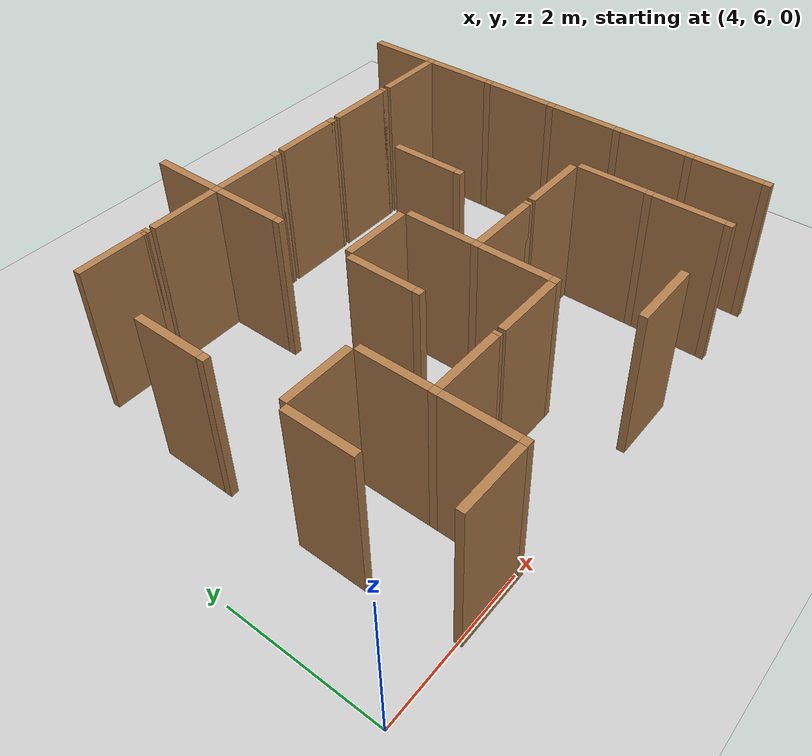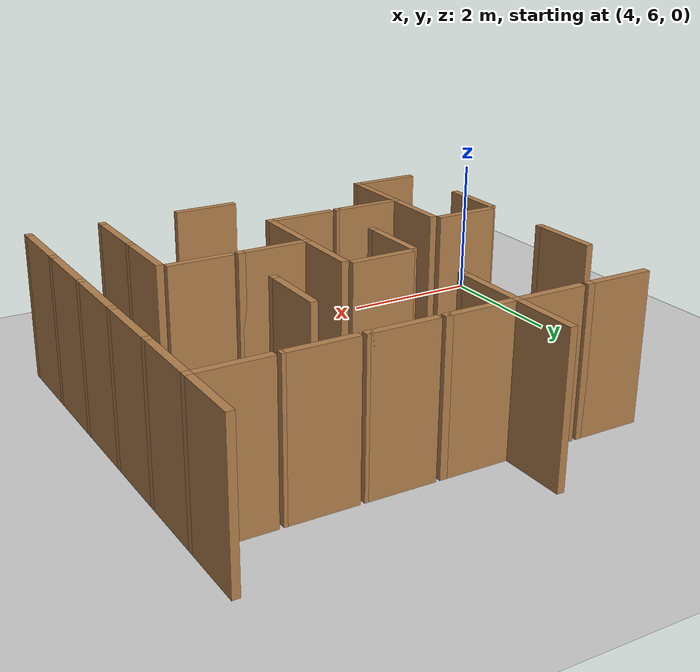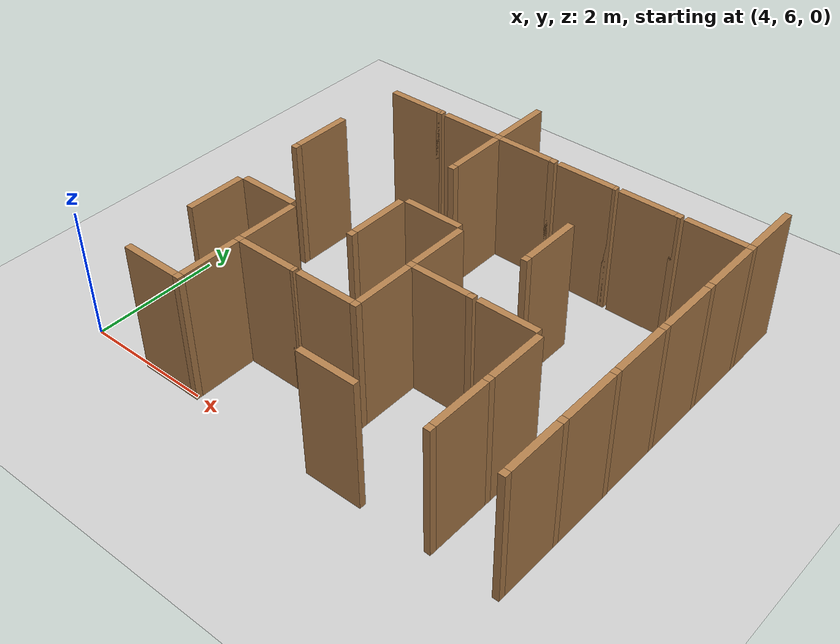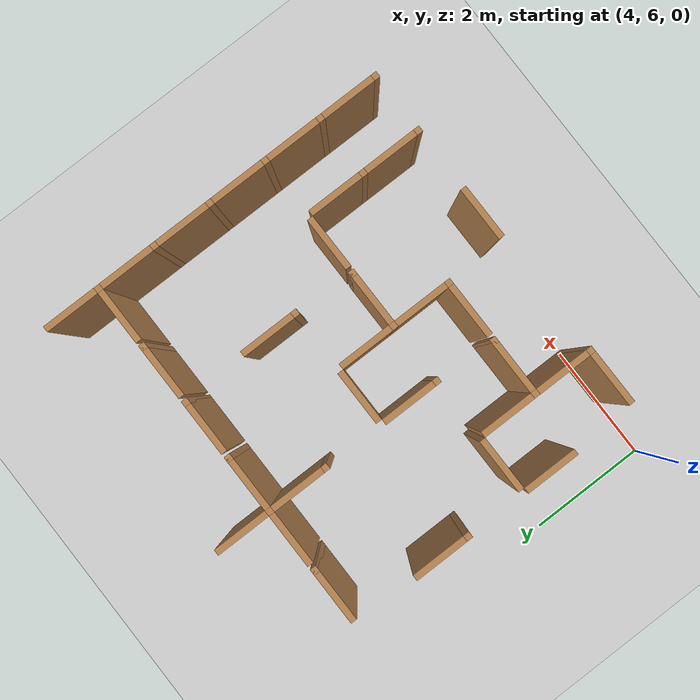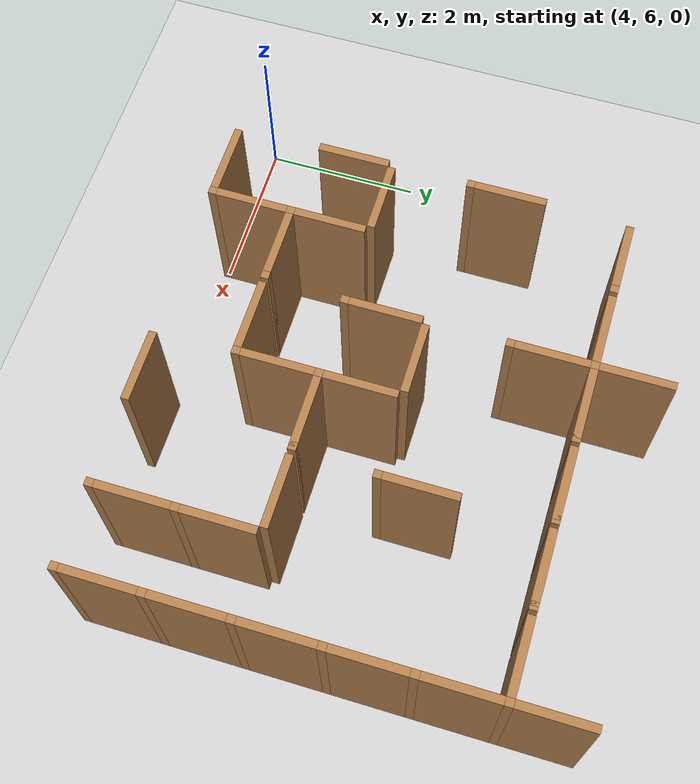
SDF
<sdf version="1.6">
 <world name="default">
  <include><uri>model://sun</uri></include>
  <model name="ground_plane">
   <static>true</static>
   <link name="link">
    <collision name="collision"><geometry><plane><size>12.0 12.0</size></plane></geometry></collision>
    <visual name="visual">
     <cast_shadows>false</cast_shadows>
     <geometry><plane><size>12.0 12.0</size></plane></geometry>
     <material>
      <script><uri>file://media/materials/scripts/gazebo.material</uri><name>Gazebo/Grey</name></script>
     </material>
    </visual>
   </link>
   <pose>6.0 6.0 0 0 0 0</pose>
  </model>
  <model name="vwall_6_6">
   <pose>6.0 6.5 1.0 0 0 0</pose>
   <link name="link">
    <collision name="collision"><geometry><box><size>0.1 0.9 2</size></box></geometry></collision>
    <visual name="visual">
     <geometry><box><size>0.1 0.9 2</size></box></geometry>
     <material>
      <script><uri>file://media/materials/scripts/gazebo.material</uri><name>Gazebo/Wood</name></script>
     </material>
    </visual>
   </link>
  </model>
  <model name="joint_6.0_6.0">
   <pose>6.0 6.0 1.0 0 0 0</pose>
   <link name="link">
    <collision name="collision"><geometry><box><size>0.1 0.1 2</size></box></geometry></collision>
    <visual name="visual">
     <geometry><box><size>0.1 0.1 2</size></box></geometry>
     <material>
      <script><uri>file://media/materials/scripts/gazebo.material</uri><name>Gazebo/Wood</name></script>
     </material>
    </visual>
   </link>
  </model>
  <model name="vwall_6_10">
   <pose>10.0 6.5 1.0 0 0 0</pose>
   <link name="link">
    <collision name="collision"><geometry><box><size>0.1 0.9 2</size></box></geometry></collision>
    <visual name="visual">
     <geometry><box><size>0.1 0.9 2</size></box></geometry>
     <material>
      <script><uri>file://media/materials/scripts/gazebo.material</uri><name>Gazebo/Wood</name></script>
     </material>
    </visual>
   </link>
  </model>
  <model name="joint_10.0_6.0">
   <pose>10.0 6.0 1.0 0 0 0</pose>
   <link name="link">
    <collision name="collision"><geometry><box><size>0.1 0.1 2</size></box></geometry></collision>
    <visual name="visual">
     <geometry><box><size>0.1 0.1 2</size></box></geometry>
     <material>
      <script><uri>file://media/materials/scripts/gazebo.material</uri><name>Gazebo/Wood</name></script>
     </material>
    </visual>
   </link>
  </model>
  <model name="vwall_6_11">
   <pose>11.0 6.5 1.0 0 0 0</pose>
   <link name="link">
    <collision name="collision"><geometry><box><size>0.1 0.9 2</size></box></geometry></collision>
    <visual name="visual">
     <geometry><box><size>0.1 0.9 2</size></box></geometry>
     <material>
      <script><uri>file://media/materials/scripts/gazebo.material</uri><name>Gazebo/Wood</name></script>
     </material>
    </visual>
   </link>
  </model>
  <model name="joint_11.0_6.0">
   <pose>11.0 6.0 1.0 0 0 0</pose>
   <link name="link">
    <collision name="collision"><geometry><box><size>0.1 0.1 2</size></box></geometry></collision>
    <visual name="visual">
     <geometry><box><size>0.1 0.1 2</size></box></geometry>
     <material>
      <script><uri>file://media/materials/scripts/gazebo.material</uri><name>Gazebo/Wood</name></script>
     </material>
    </visual>
   </link>
  </model>
  <model name="vwall_7_5">
   <pose>5.0 7.5 1.0 0 0 0</pose>
   <link name="link">
    <collision name="collision"><geometry><box><size>0.1 0.9 2</size></box></geometry></collision>
    <visual name="visual">
     <geometry><box><size>0.1 0.9 2</size></box></geometry>
     <material>
      <script><uri>file://media/materials/scripts/gazebo.material</uri><name>Gazebo/Wood</name></script>
     </material>
    </visual>
   </link>
  </model>
  <model name="vwall_7_6">
   <pose>6.0 7.5 1.0 0 0 0</pose>
   <link name="link">
    <collision name="collision"><geometry><box><size>0.1 0.9 2</size></box></geometry></collision>
    <visual name="visual">
     <geometry><box><size>0.1 0.9 2</size></box></geometry>
     <material>
      <script><uri>file://media/materials/scripts/gazebo.material</uri><name>Gazebo/Wood</name></script>
     </material>
    </visual>
   </link>
  </model>
  <model name="joint_6.0_7.0">
   <pose>6.0 7.0 1.0 0 0 0</pose>
   <link name="link">
    <collision name="collision"><geometry><box><size>0.1 0.1 2</size></box></geometry></collision>
    <visual name="visual">
     <geometry><box><size>0.1 0.1 2</size></box></geometry>
     <material>
      <script><uri>file://media/materials/scripts/gazebo.material</uri><name>Gazebo/Wood</name></script>
     </material>
    </visual>
   </link>
  </model>
  <model name="vwall_7_8">
   <pose>8.0 7.5 1.0 0 0 0</pose>
   <link name="link">
    <collision name="collision"><geometry><box><size>0.1 0.9 2</size></box></geometry></collision>
    <visual name="visual">
     <geometry><box><size>0.1 0.9 2</size></box></geometry>
     <material>
      <script><uri>file://media/materials/scripts/gazebo.material</uri><name>Gazebo/Wood</name></script>
     </material>
    </visual>
   </link>
  </model>
  <model name="joint_8.0_7.0">
   <pose>8.0 7.0 1.0 0 0 0</pose>
   <link name="link">
    <collision name="collision"><geometry><box><size>0.1 0.1 2</size></box></geometry></collision>
    <visual name="visual">
     <geometry><box><size>0.1 0.1 2</size></box></geometry>
     <material>
      <script><uri>file://media/materials/scripts/gazebo.material</uri><name>Gazebo/Wood</name></script>
     </material>
    </visual>
   </link>
  </model>
  <model name="vwall_7_10">
   <pose>10.0 7.5 1.0 0 0 0</pose>
   <link name="link">
    <collision name="collision"><geometry><box><size>0.1 0.9 2</size></box></geometry></collision>
    <visual name="visual">
     <geometry><box><size>0.1 0.9 2</size></box></geometry>
     <material>
      <script><uri>file://media/materials/scripts/gazebo.material</uri><name>Gazebo/Wood</name></script>
     </material>
    </visual>
   </link>
  </model>
  <model name="joint_10.0_7.0">
   <pose>10.0 7.0 1.0 0 0 0</pose>
   <link name="link">
    <collision name="collision"><geometry><box><size>0.1 0.1 2</size></box></geometry></collision>
    <visual name="visual">
     <geometry><box><size>0.1 0.1 2</size></box></geometry>
     <material>
      <script><uri>file://media/materials/scripts/gazebo.material</uri><name>Gazebo/Wood</name></script>
     </material>
    </visual>
   </link>
  </model>
  <model name="vwall_7_11">
   <pose>11.0 7.5 1.0 0 0 0</pose>
   <link name="link">
    <collision name="collision"><geometry><box><size>0.1 0.9 2</size></box></geometry></collision>
    <visual name="visual">
     <geometry><box><size>0.1 0.9 2</size></box></geometry>
     <material>
      <script><uri>file://media/materials/scripts/gazebo.material</uri><name>Gazebo/Wood</name></script>
     </material>
    </visual>
   </link>
  </model>
  <model name="joint_11.0_7.0">
   <pose>11.0 7.0 1.0 0 0 0</pose>
   <link name="link">
    <collision name="collision"><geometry><box><size>0.1 0.1 2</size></box></geometry></collision>
    <visual name="visual">
     <geometry><box><size>0.1 0.1 2</size></box></geometry>
     <material>
      <script><uri>file://media/materials/scripts/gazebo.material</uri><name>Gazebo/Wood</name></script>
     </material>
    </visual>
   </link>
  </model>
  <model name="vwall_8_7">
   <pose>7.0 8.5 1.0 0 0 0</pose>
   <link name="link">
    <collision name="collision"><geometry><box><size>0.1 0.9 2</size></box></geometry></collision>
    <visual name="visual">
     <geometry><box><size>0.1 0.9 2</size></box></geometry>
     <material>
      <script><uri>file://media/materials/scripts/gazebo.material</uri><name>Gazebo/Wood</name></script>
     </material>
    </visual>
   </link>
  </model>
  <model name="joint_7.0_8.0">
   <pose>7.0 8.0 1.0 0 0 0</pose>
   <link name="link">
    <collision name="collision"><geometry><box><size>0.1 0.1 2</size></box></geometry></collision>
    <visual name="visual">
     <geometry><box><size>0.1 0.1 2</size></box></geometry>
     <material>
      <script><uri>file://media/materials/scripts/gazebo.material</uri><name>Gazebo/Wood</name></script>
     </material>
    </visual>
   </link>
  </model>
  <model name="vwall_8_8">
   <pose>8.0 8.5 1.0 0 0 0</pose>
   <link name="link">
    <collision name="collision"><geometry><box><size>0.1 0.9 2</size></box></geometry></collision>
    <visual name="visual">
     <geometry><box><size>0.1 0.9 2</size></box></geometry>
     <material>
      <script><uri>file://media/materials/scripts/gazebo.material</uri><name>Gazebo/Wood</name></script>
     </material>
    </visual>
   </link>
  </model>
  <model name="joint_8.0_8.0">
   <pose>8.0 8.0 1.0 0 0 0</pose>
   <link name="link">
    <collision name="collision"><geometry><box><size>0.1 0.1 2</size></box></geometry></collision>
    <visual name="visual">
     <geometry><box><size>0.1 0.1 2</size></box></geometry>
     <material>
      <script><uri>file://media/materials/scripts/gazebo.material</uri><name>Gazebo/Wood</name></script>
     </material>
    </visual>
   </link>
  </model>
  <model name="vwall_8_11">
   <pose>11.0 8.5 1.0 0 0 0</pose>
   <link name="link">
    <collision name="collision"><geometry><box><size>0.1 0.9 2</size></box></geometry></collision>
    <visual name="visual">
     <geometry><box><size>0.1 0.9 2</size></box></geometry>
     <material>
      <script><uri>file://media/materials/scripts/gazebo.material</uri><name>Gazebo/Wood</name></script>
     </material>
    </visual>
   </link>
  </model>
  <model name="joint_11.0_8.0">
   <pose>11.0 8.0 1.0 0 0 0</pose>
   <link name="link">
    <collision name="collision"><geometry><box><size>0.1 0.1 2</size></box></geometry></collision>
    <visual name="visual">
     <geometry><box><size>0.1 0.1 2</size></box></geometry>
     <material>
      <script><uri>file://media/materials/scripts/gazebo.material</uri><name>Gazebo/Wood</name></script>
     </material>
    </visual>
   </link>
  </model>
  <model name="vwall_9_5">
   <pose>5.0 9.5 1.0 0 0 0</pose>
   <link name="link">
    <collision name="collision"><geometry><box><size>0.1 0.9 2</size></box></geometry></collision>
    <visual name="visual">
     <geometry><box><size>0.1 0.9 2</size></box></geometry>
     <material>
      <script><uri>file://media/materials/scripts/gazebo.material</uri><name>Gazebo/Wood</name></script>
     </material>
    </visual>
   </link>
  </model>
  <model name="joint_5.0_9.0">
   <pose>5.0 9.0 1.0 0 0 0</pose>
   <link name="link">
    <collision name="collision"><geometry><box><size>0.1 0.1 2</size></box></geometry></collision>
    <visual name="visual">
     <geometry><box><size>0.1 0.1 2</size></box></geometry>
     <material>
      <script><uri>file://media/materials/scripts/gazebo.material</uri><name>Gazebo/Wood</name></script>
     </material>
    </visual>
   </link>
  </model>
  <model name="vwall_9_9">
   <pose>9.0 9.5 1.0 0 0 0</pose>
   <link name="link">
    <collision name="collision"><geometry><box><size>0.1 0.9 2</size></box></geometry></collision>
    <visual name="visual">
     <geometry><box><size>0.1 0.9 2</size></box></geometry>
     <material>
      <script><uri>file://media/materials/scripts/gazebo.material</uri><name>Gazebo/Wood</name></script>
     </material>
    </visual>
   </link>
  </model>
  <model name="joint_9.0_9.0">
   <pose>9.0 9.0 1.0 0 0 0</pose>
   <link name="link">
    <collision name="collision"><geometry><box><size>0.1 0.1 2</size></box></geometry></collision>
    <visual name="visual">
     <geometry><box><size>0.1 0.1 2</size></box></geometry>
     <material>
      <script><uri>file://media/materials/scripts/gazebo.material</uri><name>Gazebo/Wood</name></script>
     </material>
    </visual>
   </link>
  </model>
  <model name="vwall_9_11">
   <pose>11.0 9.5 1.0 0 0 0</pose>
   <link name="link">
    <collision name="collision"><geometry><box><size>0.1 0.9 2</size></box></geometry></collision>
    <visual name="visual">
     <geometry><box><size>0.1 0.9 2</size></box></geometry>
     <material>
      <script><uri>file://media/materials/scripts/gazebo.material</uri><name>Gazebo/Wood</name></script>
     </material>
    </visual>
   </link>
  </model>
  <model name="joint_11.0_9.0">
   <pose>11.0 9.0 1.0 0 0 0</pose>
   <link name="link">
    <collision name="collision"><geometry><box><size>0.1 0.1 2</size></box></geometry></collision>
    <visual name="visual">
     <geometry><box><size>0.1 0.1 2</size></box></geometry>
     <material>
      <script><uri>file://media/materials/scripts/gazebo.material</uri><name>Gazebo/Wood</name></script>
     </material>
    </visual>
   </link>
  </model>
  <model name="vwall_10_7">
   <pose>7.0 10.5 1.0 0 0 0</pose>
   <link name="link">
    <collision name="collision"><geometry><box><size>0.1 0.9 2</size></box></geometry></collision>
    <visual name="visual">
     <geometry><box><size>0.1 0.9 2</size></box></geometry>
     <material>
      <script><uri>file://media/materials/scripts/gazebo.material</uri><name>Gazebo/Wood</name></script>
     </material>
    </visual>
   </link>
  </model>
  <model name="joint_7.0_10.0">
   <pose>7.0 10.0 1.0 0 0 0</pose>
   <link name="link">
    <collision name="collision"><geometry><box><size>0.1 0.1 2</size></box></geometry></collision>
    <visual name="visual">
     <geometry><box><size>0.1 0.1 2</size></box></geometry>
     <material>
      <script><uri>file://media/materials/scripts/gazebo.material</uri><name>Gazebo/Wood</name></script>
     </material>
    </visual>
   </link>
  </model>
  <model name="vwall_10_11">
   <pose>11.0 10.5 1.0 0 0 0</pose>
   <link name="link">
    <collision name="collision"><geometry><box><size>0.1 0.9 2</size></box></geometry></collision>
    <visual name="visual">
     <geometry><box><size>0.1 0.9 2</size></box></geometry>
     <material>
      <script><uri>file://media/materials/scripts/gazebo.material</uri><name>Gazebo/Wood</name></script>
     </material>
    </visual>
   </link>
  </model>
  <model name="joint_11.0_10.0">
   <pose>11.0 10.0 1.0 0 0 0</pose>
   <link name="link">
    <collision name="collision"><geometry><box><size>0.1 0.1 2</size></box></geometry></collision>
    <visual name="visual">
     <geometry><box><size>0.1 0.1 2</size></box></geometry>
     <material>
      <script><uri>file://media/materials/scripts/gazebo.material</uri><name>Gazebo/Wood</name></script>
     </material>
    </visual>
   </link>
  </model>
  <model name="vwall_11_7">
   <pose>7.0 11.5 1.0 0 0 0</pose>
   <link name="link">
    <collision name="collision"><geometry><box><size>0.1 0.9 2</size></box></geometry></collision>
    <visual name="visual">
     <geometry><box><size>0.1 0.9 2</size></box></geometry>
     <material>
      <script><uri>file://media/materials/scripts/gazebo.material</uri><name>Gazebo/Wood</name></script>
     </material>
    </visual>
   </link>
  </model>
  <model name="joint_7.0_11.0">
   <pose>7.0 11.0 1.0 0 0 0</pose>
   <link name="link">
    <collision name="collision"><geometry><box><size>0.1 0.1 2</size></box></geometry></collision>
    <visual name="visual">
     <geometry><box><size>0.1 0.1 2</size></box></geometry>
     <material>
      <script><uri>file://media/materials/scripts/gazebo.material</uri><name>Gazebo/Wood</name></script>
     </material>
    </visual>
   </link>
  </model>
  <model name="vwall_11_11">
   <pose>11.0 11.5 1.0 0 0 0</pose>
   <link name="link">
    <collision name="collision"><geometry><box><size>0.1 0.9 2</size></box></geometry></collision>
    <visual name="visual">
     <geometry><box><size>0.1 0.9 2</size></box></geometry>
     <material>
      <script><uri>file://media/materials/scripts/gazebo.material</uri><name>Gazebo/Wood</name></script>
     </material>
    </visual>
   </link>
  </model>
  <model name="joint_11.0_11.0">
   <pose>11.0 11.0 1.0 0 0 0</pose>
   <link name="link">
    <collision name="collision"><geometry><box><size>0.1 0.1 2</size></box></geometry></collision>
    <visual name="visual">
     <geometry><box><size>0.1 0.1 2</size></box></geometry>
     <material>
      <script><uri>file://media/materials/scripts/gazebo.material</uri><name>Gazebo/Wood</name></script>
     </material>
    </visual>
   </link>
  </model>
  <model name="hwall_6_5">
   <pose>5.5 6.0 1.0 0 0 0</pose>
   <link name="link">
    <collision name="collision"><geometry><box><size>0.9 0.1 2</size></box></geometry></collision>
    <visual name="visual">
     <geometry><box><size>0.9 0.1 2</size></box></geometry>
     <material>
      <script><uri>file://media/materials/scripts/gazebo.material</uri><name>Gazebo/Wood</name></script>
     </material>
    </visual>
   </link>
  </model>
  <model name="hwall_6_8">
   <pose>8.5 6.0 1.0 0 0 0</pose>
   <link name="link">
    <collision name="collision"><geometry><box><size>0.9 0.1 2</size></box></geometry></collision>
    <visual name="visual">
     <geometry><box><size>0.9 0.1 2</size></box></geometry>
     <material>
      <script><uri>file://media/materials/scripts/gazebo.material</uri><name>Gazebo/Wood</name></script>
     </material>
    </visual>
   </link>
  </model>
  <model name="hwall_7_6">
   <pose>6.5 7.0 1.0 0 0 0</pose>
   <link name="link">
    <collision name="collision"><geometry><box><size>0.9 0.1 2</size></box></geometry></collision>
    <visual name="visual">
     <geometry><box><size>0.9 0.1 2</size></box></geometry>
     <material>
      <script><uri>file://media/materials/scripts/gazebo.material</uri><name>Gazebo/Wood</name></script>
     </material>
    </visual>
   </link>
  </model>
  <model name="joint_6.95_7.0">
   <pose>6.95 7.0 1.0 0 0 0</pose>
   <link name="link">
    <collision name="collision"><geometry><box><size>0.1 0.1 2</size></box></geometry></collision>
    <visual name="visual">
     <geometry><box><size>0.1 0.1 2</size></box></geometry>
     <material>
      <script><uri>file://media/materials/scripts/gazebo.material</uri><name>Gazebo/Wood</name></script>
     </material>
    </visual>
   </link>
  </model>
  <model name="hwall_7_7">
   <pose>7.5 7.0 1.0 0 0 0</pose>
   <link name="link">
    <collision name="collision"><geometry><box><size>0.9 0.1 2</size></box></geometry></collision>
    <visual name="visual">
     <geometry><box><size>0.9 0.1 2</size></box></geometry>
     <material>
      <script><uri>file://media/materials/scripts/gazebo.material</uri><name>Gazebo/Wood</name></script>
     </material>
    </visual>
   </link>
  </model>
  <model name="hwall_8_5">
   <pose>5.5 8.0 1.0 0 0 0</pose>
   <link name="link">
    <collision name="collision"><geometry><box><size>0.9 0.1 2</size></box></geometry></collision>
    <visual name="visual">
     <geometry><box><size>0.9 0.1 2</size></box></geometry>
     <material>
      <script><uri>file://media/materials/scripts/gazebo.material</uri><name>Gazebo/Wood</name></script>
     </material>
    </visual>
   </link>
  </model>
  <model name="hwall_8_8">
   <pose>8.5 8.0 1.0 0 0 0</pose>
   <link name="link">
    <collision name="collision"><geometry><box><size>0.9 0.1 2</size></box></geometry></collision>
    <visual name="visual">
     <geometry><box><size>0.9 0.1 2</size></box></geometry>
     <material>
      <script><uri>file://media/materials/scripts/gazebo.material</uri><name>Gazebo/Wood</name></script>
     </material>
    </visual>
   </link>
  </model>
  <model name="joint_8.95_8.0">
   <pose>8.95 8.0 1.0 0 0 0</pose>
   <link name="link">
    <collision name="collision"><geometry><box><size>0.1 0.1 2</size></box></geometry></collision>
    <visual name="visual">
     <geometry><box><size>0.1 0.1 2</size></box></geometry>
     <material>
      <script><uri>file://media/materials/scripts/gazebo.material</uri><name>Gazebo/Wood</name></script>
     </material>
    </visual>
   </link>
  </model>
  <model name="hwall_8_9">
   <pose>9.5 8.0 1.0 0 0 0</pose>
   <link name="link">
    <collision name="collision"><geometry><box><size>0.9 0.1 2</size></box></geometry></collision>
    <visual name="visual">
     <geometry><box><size>0.9 0.1 2</size></box></geometry>
     <material>
      <script><uri>file://media/materials/scripts/gazebo.material</uri><name>Gazebo/Wood</name></script>
     </material>
    </visual>
   </link>
  </model>
  <model name="hwall_9_7">
   <pose>7.5 9.0 1.0 0 0 0</pose>
   <link name="link">
    <collision name="collision"><geometry><box><size>0.9 0.1 2</size></box></geometry></collision>
    <visual name="visual">
     <geometry><box><size>0.9 0.1 2</size></box></geometry>
     <material>
      <script><uri>file://media/materials/scripts/gazebo.material</uri><name>Gazebo/Wood</name></script>
     </material>
    </visual>
   </link>
  </model>
  <model name="hwall_11_5">
   <pose>5.5 11.0 1.0 0 0 0</pose>
   <link name="link">
    <collision name="collision"><geometry><box><size>0.9 0.1 2</size></box></geometry></collision>
    <visual name="visual">
     <geometry><box><size>0.9 0.1 2</size></box></geometry>
     <material>
      <script><uri>file://media/materials/scripts/gazebo.material</uri><name>Gazebo/Wood</name></script>
     </material>
    </visual>
   </link>
  </model>
  <model name="joint_5.95_11.0">
   <pose>5.95 11.0 1.0 0 0 0</pose>
   <link name="link">
    <collision name="collision"><geometry><box><size>0.1 0.1 2</size></box></geometry></collision>
    <visual name="visual">
     <geometry><box><size>0.1 0.1 2</size></box></geometry>
     <material>
      <script><uri>file://media/materials/scripts/gazebo.material</uri><name>Gazebo/Wood</name></script>
     </material>
    </visual>
   </link>
  </model>
  <model name="hwall_11_6">
   <pose>6.5 11.0 1.0 0 0 0</pose>
   <link name="link">
    <collision name="collision"><geometry><box><size>0.9 0.1 2</size></box></geometry></collision>
    <visual name="visual">
     <geometry><box><size>0.9 0.1 2</size></box></geometry>
     <material>
      <script><uri>file://media/materials/scripts/gazebo.material</uri><name>Gazebo/Wood</name></script>
     </material>
    </visual>
   </link>
  </model>
  <model name="hwall_11_7">
   <pose>7.5 11.0 1.0 0 0 0</pose>
   <link name="link">
    <collision name="collision"><geometry><box><size>0.9 0.1 2</size></box></geometry></collision>
    <visual name="visual">
     <geometry><box><size>0.9 0.1 2</size></box></geometry>
     <material>
      <script><uri>file://media/materials/scripts/gazebo.material</uri><name>Gazebo/Wood</name></script>
     </material>
    </visual>
   </link>
  </model>
  <model name="joint_7.95_11.0">
   <pose>7.95 11.0 1.0 0 0 0</pose>
   <link name="link">
    <collision name="collision"><geometry><box><size>0.1 0.1 2</size></box></geometry></collision>
    <visual name="visual">
     <geometry><box><size>0.1 0.1 2</size></box></geometry>
     <material>
      <script><uri>file://media/materials/scripts/gazebo.material</uri><name>Gazebo/Wood</name></script>
     </material>
    </visual>
   </link>
  </model>
  <model name="hwall_11_8">
   <pose>8.5 11.0 1.0 0 0 0</pose>
   <link name="link">
    <collision name="collision"><geometry><box><size>0.9 0.1 2</size></box></geometry></collision>
    <visual name="visual">
     <geometry><box><size>0.9 0.1 2</size></box></geometry>
     <material>
      <script><uri>file://media/materials/scripts/gazebo.material</uri><name>Gazebo/Wood</name></script>
     </material>
    </visual>
   </link>
  </model>
  <model name="joint_8.95_11.0">
   <pose>8.95 11.0 1.0 0 0 0</pose>
   <link name="link">
    <collision name="collision"><geometry><box><size>0.1 0.1 2</size></box></geometry></collision>
    <visual name="visual">
     <geometry><box><size>0.1 0.1 2</size></box></geometry>
     <material>
      <script><uri>file://media/materials/scripts/gazebo.material</uri><name>Gazebo/Wood</name></script>
     </material>
    </visual>
   </link>
  </model>
  <model name="hwall_11_9">
   <pose>9.5 11.0 1.0 0 0 0</pose>
   <link name="link">
    <collision name="collision"><geometry><box><size>0.9 0.1 2</size></box></geometry></collision>
    <visual name="visual">
     <geometry><box><size>0.9 0.1 2</size></box></geometry>
     <material>
      <script><uri>file://media/materials/scripts/gazebo.material</uri><name>Gazebo/Wood</name></script>
     </material>
    </visual>
   </link>
  </model>
  <model name="joint_9.95_11.0">
   <pose>9.95 11.0 1.0 0 0 0</pose>
   <link name="link">
    <collision name="collision"><geometry><box><size>0.1 0.1 2</size></box></geometry></collision>
    <visual name="visual">
     <geometry><box><size>0.1 0.1 2</size></box></geometry>
     <material>
      <script><uri>file://media/materials/scripts/gazebo.material</uri><name>Gazebo/Wood</name></script>
     </material>
    </visual>
   </link>
  </model>
  <model name="hwall_11_10">
   <pose>10.5 11.0 1.0 0 0 0</pose>
   <link name="link">
    <collision name="collision"><geometry><box><size>0.9 0.1 2</size></box></geometry></collision>
    <visual name="visual">
     <geometry><box><size>0.9 0.1 2</size></box></geometry>
     <material>
      <script><uri>file://media/materials/scripts/gazebo.material</uri><name>Gazebo/Wood</name></script>
     </material>
    </visual>
   </link>
  </model>
 </world>
</sdf>
